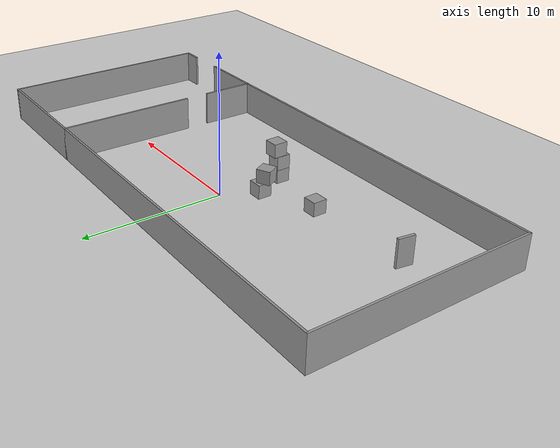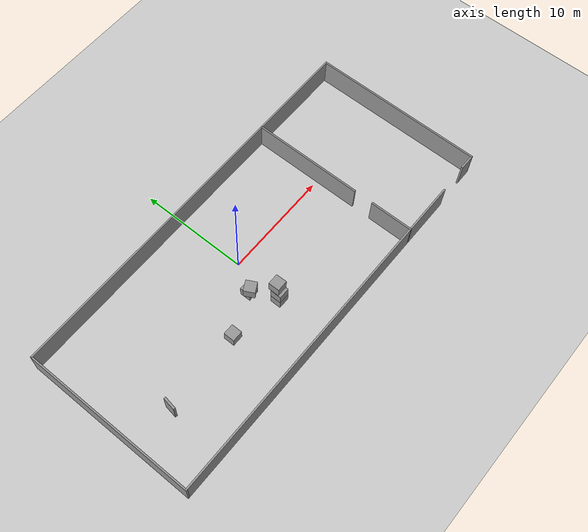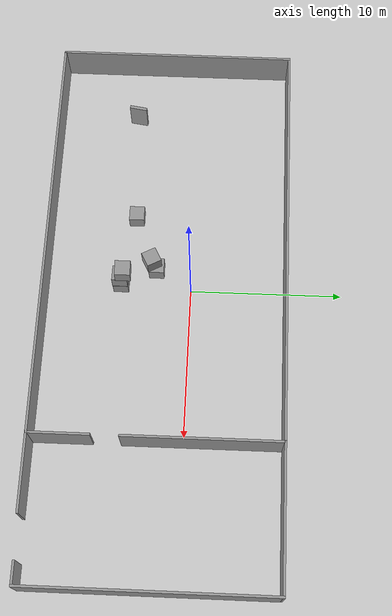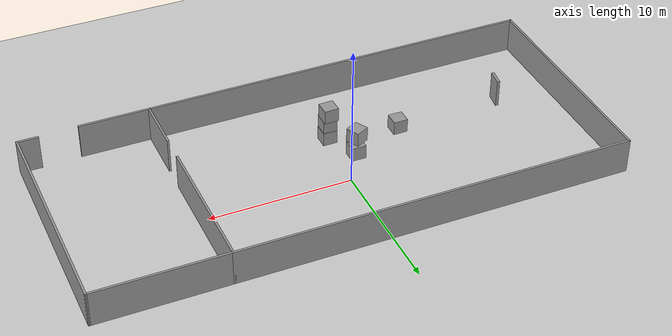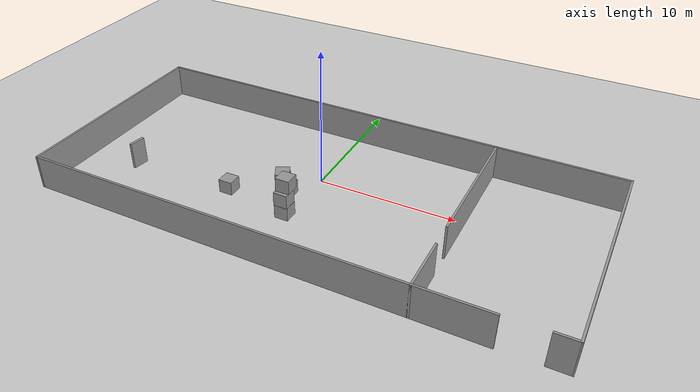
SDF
<sdf version="1.6">
 <world name="default">
  <light name="sun" type="directional">
   <pose>0 0 10 0 -0 0</pose>
   <diffuse>0.8 0.8 0.8 1</diffuse>
   <specular>0.2 0.2 0.2 1</specular>
   <attenuation>
    <range>1000</range>
    <constant>0.9</constant>
    <linear>0.01</linear>
    <quadratic>0.001</quadratic>
   </attenuation>
   <direction>-0.5 0.1 -0.9</direction>
  </light>
  <model name="ground_plane">
   <static>1</static>
   <link name="link">
    <collision name="collision">
     <geometry><plane><normal>0 0 1</normal><size>100 100</size></plane></geometry>
     <surface><friction><ode><mu>100</mu><mu2>50</mu2></ode></friction></surface>
    </collision>
    <visual name="visual">
     <cast_shadows>0</cast_shadows>
     <geometry><plane><normal>0 0 1</normal><size>100 100</size></plane></geometry>
     <material>
      <script><uri>file://media/materials/scripts/gazebo.material</uri><name>Gazebo/Grey</name></script>
     </material>
    </visual>
   </link>
  </model>
  <gravity>0 0 -9.8</gravity>
  <magnetic_field>6e-06 2.3e-05 -4.2e-05</magnetic_field>
  <atmosphere type="adiabatic"/>
  <physics name="default_physics" default="0" type="ode">
   <max_step_size>0.001</max_step_size>
   <real_time_factor>1</real_time_factor>
   <real_time_update_rate>1000</real_time_update_rate>
  </physics>
  <scene><ambient>0.4 0.4 0.4 1</ambient><background>0.7 0.7 0.7 1</background><shadows>1</shadows></scene>
  <spherical_coordinates>
   <surface_model>EARTH_WGS84</surface_model>
   <latitude_deg>0</latitude_deg>
   <longitude_deg>0</longitude_deg>
   <elevation>0</elevation>
   <heading_deg>0</heading_deg>
  </spherical_coordinates>
  <model name="experi">
   <pose>1.33332 -1.66332 0 0 -0 0</pose>
   <link name="Door_0">
    <collision name="Door_0_Collision">
     <geometry><box><size>1.18 0.2 2</size></box></geometry>
     <pose>0 0 1 0 -0 0</pose>
    </collision>
    <visual name="Door_0_Visual">
     <pose>0 0 1 0 -0 0</pose>
     <geometry><box><size>1.18 0.2 2</size></box></geometry>
     <material>
      <script><uri>file://media/materials/scripts/gazebo.material</uri><name>Gazebo/Grey</name></script>
     </material>
    </visual>
    <pose>-14.2386 -2.52558 0 0 -0 -1.72455</pose>
   </link>
   <link name="Wall_0">
    <collision name="Wall_0_Collision">
     <geometry><box><size>27.75 0.15 2.5</size></box></geometry>
     <pose>0 0 1.25 0 -0 0</pose>
    </collision>
    <visual name="Wall_0_Visual">
     <pose>0 0 1.25 0 -0 0</pose>
     <geometry><box><size>27.75 0.15 2.5</size></box></geometry>
     <material>
      <script><uri>file://media/materials/scripts/gazebo.material</uri><name>Gazebo/Grey</name></script>
      <ambient>1 1 1 1</ambient>
     </material>
     <meta><layer>0</layer></meta>
    </visual>
    <pose>-4.55006 7.92494 0 0 -0 0</pose>
   </link>
   <link name="Wall_1">
    <collision name="Wall_1_Collision">
     <geometry><box><size>10.25 0.15 2.5</size></box></geometry>
     <pose>0 0 1.25 0 -0 0</pose>
    </collision>
    <visual name="Wall_1_Visual">
     <pose>0 0 1.25 0 -0 0</pose>
     <geometry><box><size>10.25 0.15 2.5</size></box></geometry>
     <material>
      <script><uri>file://media/materials/scripts/gazebo.material</uri><name>Gazebo/Grey</name></script>
      <ambient>1 1 1 1</ambient>
     </material>
     <meta><layer>0</layer></meta>
    </visual>
    <pose>9.24994 2.87494 0 0 -0 -1.5708</pose>
   </link>
   <link name="Wall_11">
    <collision name="Wall_11_Collision">
     <geometry><box><size>5 0.15 2.5</size></box></geometry>
     <pose>0 0 1.25 0 -0 0</pose>
    </collision>
    <visual name="Wall_11_Visual">
     <pose>0 0 1.25 0 -0 0</pose>
     <geometry><box><size>5 0.15 2.5</size></box></geometry>
     <material>
      <script><uri>file://media/materials/scripts/gazebo.material</uri><name>Gazebo/Grey</name></script>
      <ambient>1 1 1 1</ambient>
     </material>
     <meta><layer>0</layer></meta>
    </visual>
    <pose>11.6749 -7.92506 0 0 -0 0</pose>
   </link>
   <link name="Wall_3">
    <collision name="Wall_3_Collision">
     <geometry><box><size>16 0.15 2.5</size></box></geometry>
     <pose>0 0 1.25 0 -0 0</pose>
    </collision>
    <visual name="Wall_3_Visual">
     <pose>0 0 1.25 0 -0 0</pose>
     <geometry><box><size>16 0.15 2.5</size></box></geometry>
     <material>
      <script><uri>file://media/materials/scripts/gazebo.material</uri><name>Gazebo/Grey</name></script>
      <ambient>1 1 1 1</ambient>
     </material>
     <meta><layer>0</layer></meta>
    </visual>
    <pose>-18.3501 -6.3e-05 0 0 -0 -1.5708</pose>
   </link>
   <link name="Wall_4">
    <collision name="Wall_4_Collision">
     <geometry><box><size>27.75 0.15 2.5</size></box></geometry>
     <pose>0 0 1.25 0 -0 0</pose>
    </collision>
    <visual name="Wall_4_Visual">
     <pose>0 0 1.25 0 -0 0</pose>
     <geometry><box><size>27.75 0.15 2.5</size></box></geometry>
     <material>
      <script><uri>file://media/materials/scripts/gazebo.material</uri><name>Gazebo/Grey</name></script>
      <ambient>1 1 1 1</ambient>
     </material>
     <meta><layer>0</layer></meta>
    </visual>
    <pose>-4.55006 -7.92506 0 0 -0 0</pose>
   </link>
   <link name="Wall_5">
    <collision name="Wall_5_Collision">
     <geometry><box><size>4 0.15 2.5</size></box></geometry>
     <pose>0 0 1.25 0 -0 0</pose>
    </collision>
    <visual name="Wall_5_Visual">
     <pose>0 0 1.25 0 -0 0</pose>
     <geometry><box><size>4 0.15 2.5</size></box></geometry>
     <material>
      <script><uri>file://media/materials/scripts/gazebo.material</uri><name>Gazebo/Grey</name></script>
      <ambient>1 1 1 1</ambient>
     </material>
     <meta><layer>0</layer></meta>
    </visual>
    <pose>9.24994 -6.00006 0 0 -0 1.5708</pose>
   </link>
   <link name="Wall_7">
    <collision name="Wall_7_Collision">
     <geometry><box><size>9.25 0.15 2.5</size></box></geometry>
     <pose>0 0 1.25 0 -0 0</pose>
    </collision>
    <visual name="Wall_7_Visual">
     <pose>0 0 1.25 0 -0 0</pose>
     <geometry><box><size>9.25 0.15 2.5</size></box></geometry>
     <material>
      <script><uri>file://media/materials/scripts/gazebo.material</uri><name>Gazebo/Grey</name></script>
      <ambient>1 1 1 1</ambient>
     </material>
     <meta><layer>0</layer></meta>
    </visual>
    <pose>13.7999 7.92494 0 0 -0 0</pose>
   </link>
   <link name="Wall_8">
    <collision name="Wall_8_Collision">
     <geometry><box><size>15.9062 0.15 2.5</size></box></geometry>
     <pose>0 0 1.25 0 -0 0</pose>
    </collision>
    <visual name="Wall_8_Visual">
     <pose>0 0 1.25 0 -0 0</pose>
     <geometry><box><size>15.9062 0.15 2.5</size></box></geometry>
     <material>
      <script><uri>file://media/materials/scripts/gazebo.material</uri><name>Gazebo/Grey</name></script>
      <ambient>1 1 1 1</ambient>
     </material>
     <meta><layer>0</layer></meta>
    </visual>
    <pose>18.3367 0.046862 0 0 -0 -1.57248</pose>
   </link>
   <link name="Wall_9">
    <collision name="Wall_9_Collision">
     <geometry><box><size>1.5 0.15 2.5</size></box></geometry>
     <pose>0 0 1.25 0 -0 0</pose>
    </collision>
    <visual name="Wall_9_Visual">
     <pose>0 0 1.25 0 -0 0</pose>
     <geometry><box><size>1.5 0.15 2.5</size></box></geometry>
     <material>
      <script><uri>file://media/materials/scripts/gazebo.material</uri><name>Gazebo/Grey</name></script>
      <ambient>1 1 1 1</ambient>
     </material>
     <meta><layer>0</layer></meta>
    </visual>
    <pose>17.622 -7.83121 0 0 -0 3.14159</pose>
   </link>
   <static>1</static>
  </model>
  <model name="unit_box">
   <pose>-0.312214 -4.6367 0.499996 0 8e-06 -0.001611</pose>
   <link name="link">
    <inertial>
     <mass>1</mass>
     <inertia>
      <ixx>0.166667</ixx>
      <ixy>0</ixy>
      <ixz>0</ixz>
      <iyy>0.166667</iyy>
      <iyz>0</iyz>
      <izz>0.166667</izz>
     </inertia>
    </inertial>
    <collision name="collision"><geometry><box><size>1 1 1</size></box></geometry></collision>
    <visual name="visual">
     <geometry><box><size>1 1 1</size></box></geometry>
     <material>
      <script><name>Gazebo/Grey</name><uri>file://media/materials/scripts/gazebo.material</uri></script>
     </material>
    </visual>
   </link>
  </model>
  <model name="unit_box_0">
   <pose>-5.22465 -3.87669 0.499995 0 -1e-05 0</pose>
   <link name="link">
    <inertial>
     <mass>1</mass>
     <inertia>
      <ixx>0.166667</ixx>
      <ixy>0</ixy>
      <ixz>0</ixz>
      <iyy>0.166667</iyy>
      <iyz>0</iyz>
      <izz>0.166667</izz>
     </inertia>
    </inertial>
    <collision name="collision"><geometry><box><size>1 1 1</size></box></geometry></collision>
    <visual name="visual">
     <geometry><box><size>1 1 1</size></box></geometry>
     <material>
      <script><name>Gazebo/Grey</name><uri>file://media/materials/scripts/gazebo.material</uri></script>
     </material>
    </visual>
   </link>
  </model>
  <model name="unit_box_1">
   <pose>-1.39782 -2.3279 0.489686 0.013783 -0.008272 0.002433</pose>
   <link name="link">
    <inertial>
     <mass>1</mass>
     <inertia>
      <ixx>0.166667</ixx>
      <ixy>0</ixy>
      <ixz>0</ixz>
      <iyy>0.166667</iyy>
      <iyz>0</iyz>
      <izz>0.166667</izz>
     </inertia>
    </inertial>
    <collision name="collision"><geometry><box><size>1 1 1</size></box></geometry></collision>
    <visual name="visual">
     <geometry><box><size>1 1 1</size></box></geometry>
     <material>
      <script><name>Gazebo/Grey</name><uri>file://media/materials/scripts/gazebo.material</uri></script>
     </material>
    </visual>
   </link>
  </model>
  <model name="unit_box_2">
   <pose>-1.58194 -2.63777 1.48398 0.008419 -0.013744 0.483131</pose>
   <link name="link">
    <inertial>
     <mass>1</mass>
     <inertia>
      <ixx>0.166667</ixx>
      <ixy>0</ixy>
      <ixz>0</ixz>
      <iyy>0.166667</iyy>
      <iyz>0</iyz>
      <izz>0.166667</izz>
     </inertia>
    </inertial>
    <collision name="collision"><geometry><box><size>1 1 1</size></box></geometry></collision>
    <visual name="visual">
     <geometry><box><size>1 1 1</size></box></geometry>
     <material>
      <script><name>Gazebo/Grey</name><uri>file://media/materials/scripts/gazebo.material</uri></script>
     </material>
    </visual>
   </link>
  </model>
  <model name="unit_box_3">
   <pose>-0.29341 -4.39962 2.49168 -0.007124 0.001105 0.01299</pose>
   <link name="link">
    <inertial>
     <mass>1</mass>
     <inertia>
      <ixx>0.166667</ixx>
      <ixy>0</ixy>
      <ixz>0</ixz>
      <iyy>0.166667</iyy>
      <iyz>0</iyz>
      <izz>0.166667</izz>
     </inertia>
    </inertial>
    <collision name="collision"><geometry><box><size>1 1 1</size></box></geometry></collision>
    <visual name="visual">
     <geometry><box><size>1 1 1</size></box></geometry>
     <material>
      <script><name>Gazebo/Grey</name><uri>file://media/materials/scripts/gazebo.material</uri></script>
     </material>
    </visual>
   </link>
  </model>
  <model name="unit_box_4">
   <pose>-0.327605 -4.64483 1.49347 -0.007126 0.000884 -0.017483</pose>
   <link name="link">
    <inertial>
     <mass>1</mass>
     <inertia>
      <ixx>0.166667</ixx>
      <ixy>0</ixy>
      <ixz>0</ixz>
      <iyy>0.166667</iyy>
      <iyz>0</iyz>
      <izz>0.166667</izz>
     </inertia>
    </inertial>
    <collision name="collision"><geometry><box><size>1 1 1</size></box></geometry></collision>
    <visual name="visual">
     <geometry><box><size>1 1 1</size></box></geometry>
     <material>
      <script><name>Gazebo/Grey</name><uri>file://media/materials/scripts/gazebo.material</uri></script>
     </material>
    </visual>
   </link>
  </model>
 </world>
</sdf>
